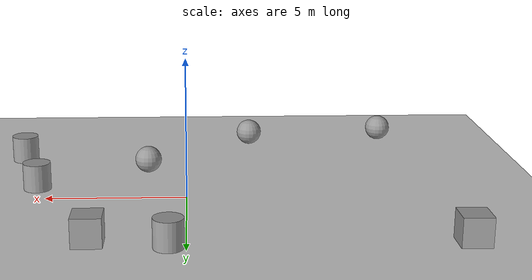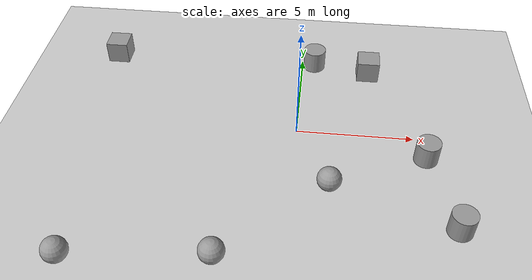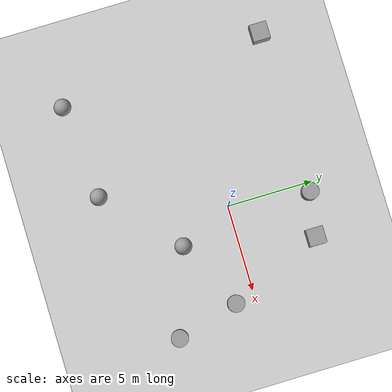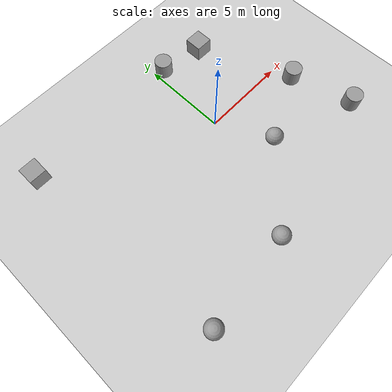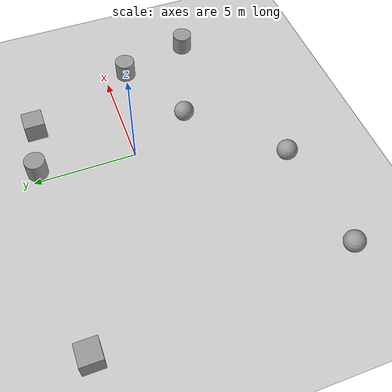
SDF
<sdf version="1.7">
 <world name="default">
  <model name="ground_plane">
   <static>1</static>
   <link name="link">
    <collision name="collision">
     <geometry><plane><normal>0 0 1</normal><size>100 100</size></plane></geometry>
     <surface>
      <contact><collide_bitmask>65535</collide_bitmask></contact>
      <friction><ode><mu>100</mu><mu2>50</mu2></ode></friction>
     </surface>
    </collision>
    <visual name="visual">
     <cast_shadows>0</cast_shadows>
     <geometry><plane><normal>0 0 1</normal><size>100 100</size></plane></geometry>
     <material>
      <script><uri>file://media/materials/scripts/gazebo.material</uri><name>Gazebo/Grey</name></script>
     </material>
    </visual>
   </link>
  </model>
  <model name="unit_sphere">
   <pose>1.46969 -3.08265 0.5 0 -0 0</pose>
   <link name="link">
    <inertial>
     <mass>1</mass>
     <inertia><ixx>0.1</ixx><ixy>0</ixy><ixz>0</ixz><iyy>0.1</iyy><iyz>0</iyz><izz>0.1</izz></inertia>
    </inertial>
    <collision name="collision"><geometry><sphere><radius>0.5</radius></sphere></geometry></collision>
    <visual name="visual">
     <geometry><sphere><radius>0.5</radius></sphere></geometry>
     <material>
      <script><name>Gazebo/Grey</name><uri>file://media/materials/scripts/gazebo.material</uri></script>
     </material>
    </visual>
   </link>
  </model>
  <model name="unit_sphere_0">
   <pose>-2.58547 -6.90334 0.5 0 -0 0</pose>
   <link name="link">
    <inertial>
     <mass>1</mass>
     <inertia><ixx>0.1</ixx><ixy>0</ixy><ixz>0</ixz><iyy>0.1</iyy><iyz>0</iyz><izz>0.1</izz></inertia>
    </inertial>
    <collision name="collision"><geometry><sphere><radius>0.5</radius></sphere></geometry></collision>
    <visual name="visual">
     <geometry><sphere><radius>0.5</radius></sphere></geometry>
     <material>
      <script><name>Gazebo/Grey</name><uri>file://media/materials/scripts/gazebo.material</uri></script>
     </material>
    </visual>
   </link>
  </model>
  <model name="unit_box">
   <pose>3.09363 4.26844 0.49907 -0.0001 0 0</pose>
   <link name="link">
    <inertial>
     <mass>1</mass>
     <inertia>
      <ixx>0.166667</ixx>
      <ixy>0</ixy>
      <ixz>0</ixz>
      <iyy>0.166667</iyy>
      <iyz>0</iyz>
      <izz>0.166667</izz>
     </inertia>
    </inertial>
    <collision name="collision"><geometry><box><size>1 1 1</size></box></geometry></collision>
    <visual name="visual">
     <geometry><box><size>1 1 1</size></box></geometry>
     <material>
      <script><name>Gazebo/Grey</name><uri>file://media/materials/scripts/gazebo.material</uri></script>
     </material>
    </visual>
   </link>
  </model>
  <model name="unit_cylinder">
   <pose>0.554052 4.70353 0.499096 4.8e-05 4.8e-05 -5e-06</pose>
   <link name="link">
    <inertial>
     <mass>1</mass>
     <inertia><ixx>0.145833</ixx><ixy>0</ixy><ixz>0</ixz><iyy>0.145833</iyy><iyz>0</iyz><izz>0.125</izz></inertia>
    </inertial>
    <collision name="collision">
     <geometry><cylinder><radius>0.5</radius><length>1</length></cylinder></geometry>
    </collision>
    <visual name="visual">
     <geometry><cylinder><radius>0.5</radius><length>1</length></cylinder></geometry>
     <material>
      <script><name>Gazebo/Grey</name><uri>file://media/materials/scripts/gazebo.material</uri></script>
     </material>
    </visual>
   </link>
  </model>
  <model name="unit_cylinder_0">
   <pose>6.39549 -4.75826 0.49912 0 0 -4e-06</pose>
   <link name="link">
    <inertial>
     <mass>1</mass>
     <inertia><ixx>0.145833</ixx><ixy>0</ixy><ixz>0</ixz><iyy>0.145833</iyy><iyz>0</iyz><izz>0.125</izz></inertia>
    </inertial>
    <collision name="collision">
     <geometry><cylinder><radius>0.5</radius><length>1</length></cylinder></geometry>
    </collision>
    <visual name="visual">
     <geometry><cylinder><radius>0.5</radius><length>1</length></cylinder></geometry>
     <material>
      <script><name>Gazebo/Grey</name><uri>file://media/materials/scripts/gazebo.material</uri></script>
     </material>
    </visual>
   </link>
  </model>
  <model name="unit_box_0">
   <pose>-9.0058 4.5893 0.49967 0.00066 -0 0</pose>
   <link name="link">
    <inertial>
     <mass>1</mass>
     <inertia>
      <ixx>0.166667</ixx>
      <ixy>0</ixy>
      <ixz>0</ixz>
      <iyy>0.166667</iyy>
      <iyz>0</iyz>
      <izz>0.166667</izz>
     </inertia>
    </inertial>
    <collision name="collision"><geometry><box><size>1 1 1</size></box></geometry></collision>
    <visual name="visual">
     <geometry><box><size>1 1 1</size></box></geometry>
     <material>
      <script><name>Gazebo/Grey</name><uri>file://media/materials/scripts/gazebo.material</uri></script>
     </material>
    </visual>
   </link>
  </model>
  <model name="unit_sphere_1">
   <pose>-8.10426 -7.4393 0.5 0 -0 0</pose>
   <link name="link">
    <inertial>
     <mass>1</mass>
     <inertia><ixx>0.1</ixx><ixy>0</ixy><ixz>0</ixz><iyy>0.1</iyy><iyz>0</iyz><izz>0.1</izz></inertia>
    </inertial>
    <collision name="collision"><geometry><sphere><radius>0.5</radius></sphere></geometry></collision>
    <visual name="visual">
     <geometry><sphere><radius>0.5</radius></sphere></geometry>
     <material>
      <script><name>Gazebo/Grey</name><uri>file://media/materials/scripts/gazebo.material</uri></script>
     </material>
    </visual>
   </link>
  </model>
  <model name="unit_cylinder_1">
   <pose>5.43276 -1.15023 0.499096 4.8e-05 4.8e-05 -1e-06</pose>
   <link name="link">
    <inertial>
     <mass>1</mass>
     <inertia><ixx>0.145833</ixx><ixy>0</ixy><ixz>0</ixz><iyy>0.145833</iyy><iyz>0</iyz><izz>0.125</izz></inertia>
    </inertial>
    <collision name="collision">
     <geometry><cylinder><radius>0.5</radius><length>1</length></cylinder></geometry>
    </collision>
    <visual name="visual">
     <geometry><cylinder><radius>0.5</radius><length>1</length></cylinder></geometry>
     <material>
      <script><name>Gazebo/Grey</name><uri>file://media/materials/scripts/gazebo.material</uri></script>
     </material>
    </visual>
   </link>
  </model>
 </world>
</sdf>
